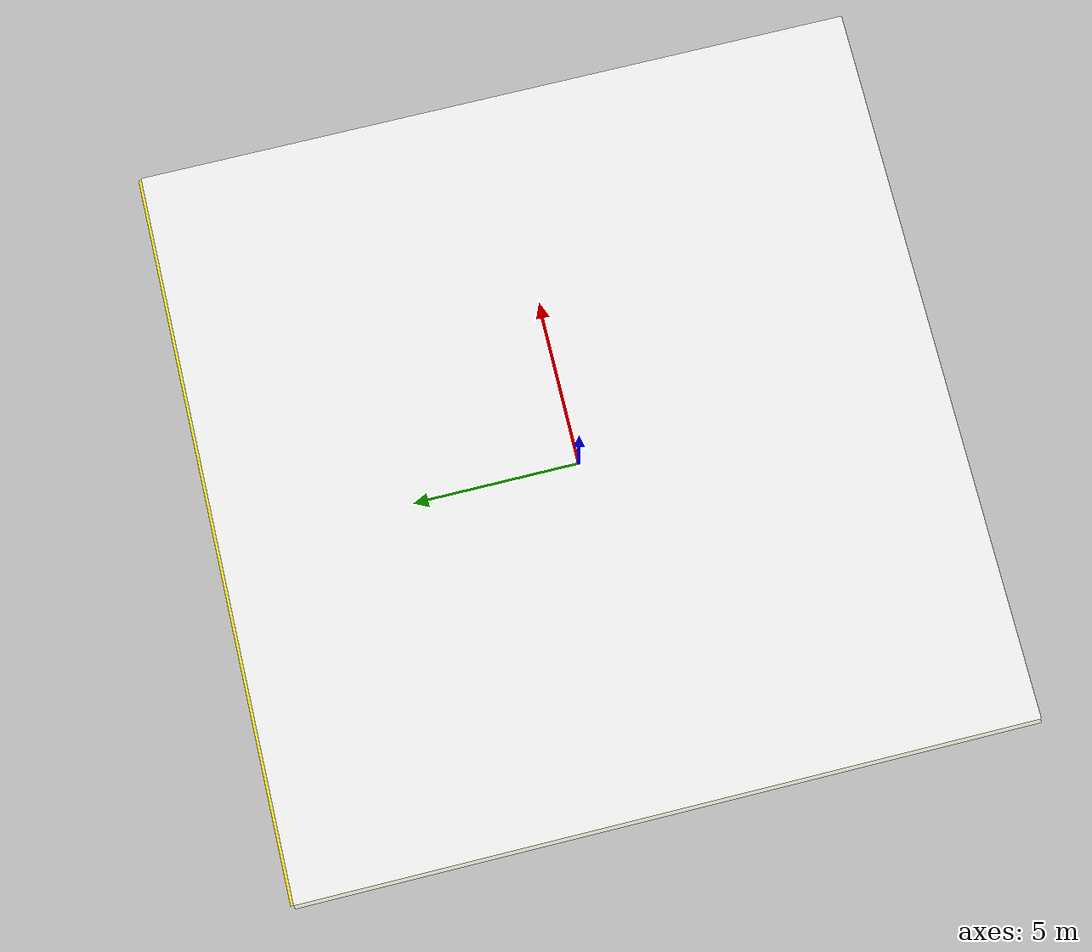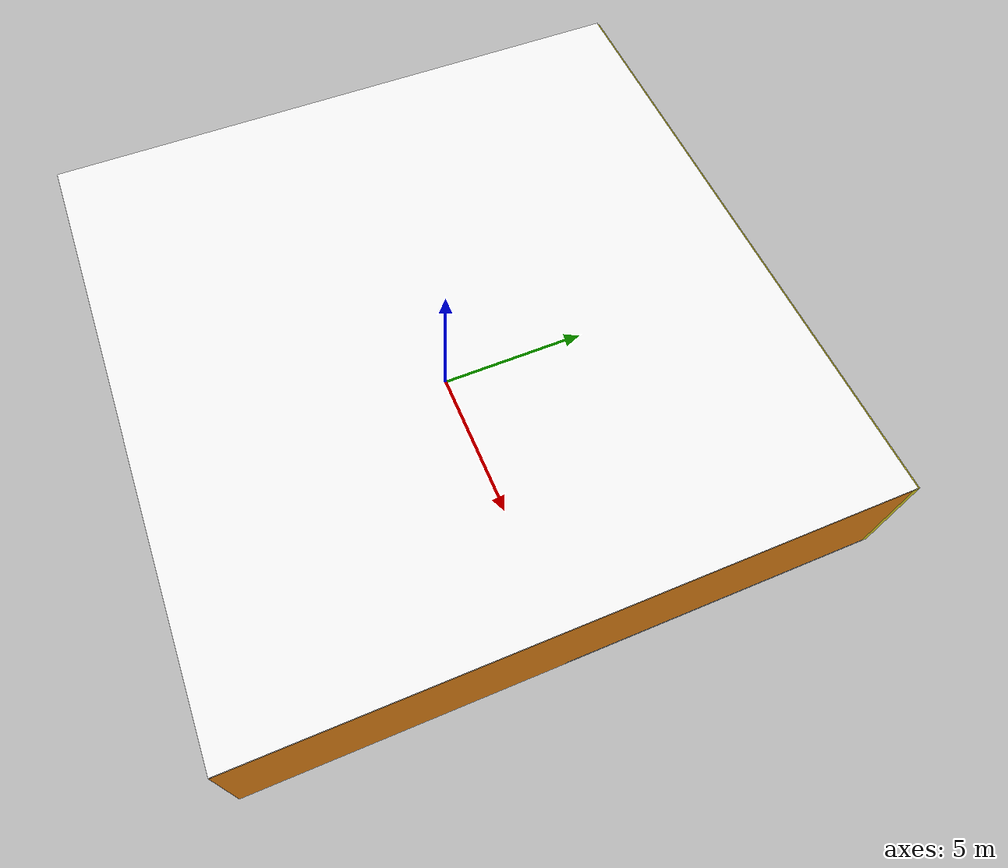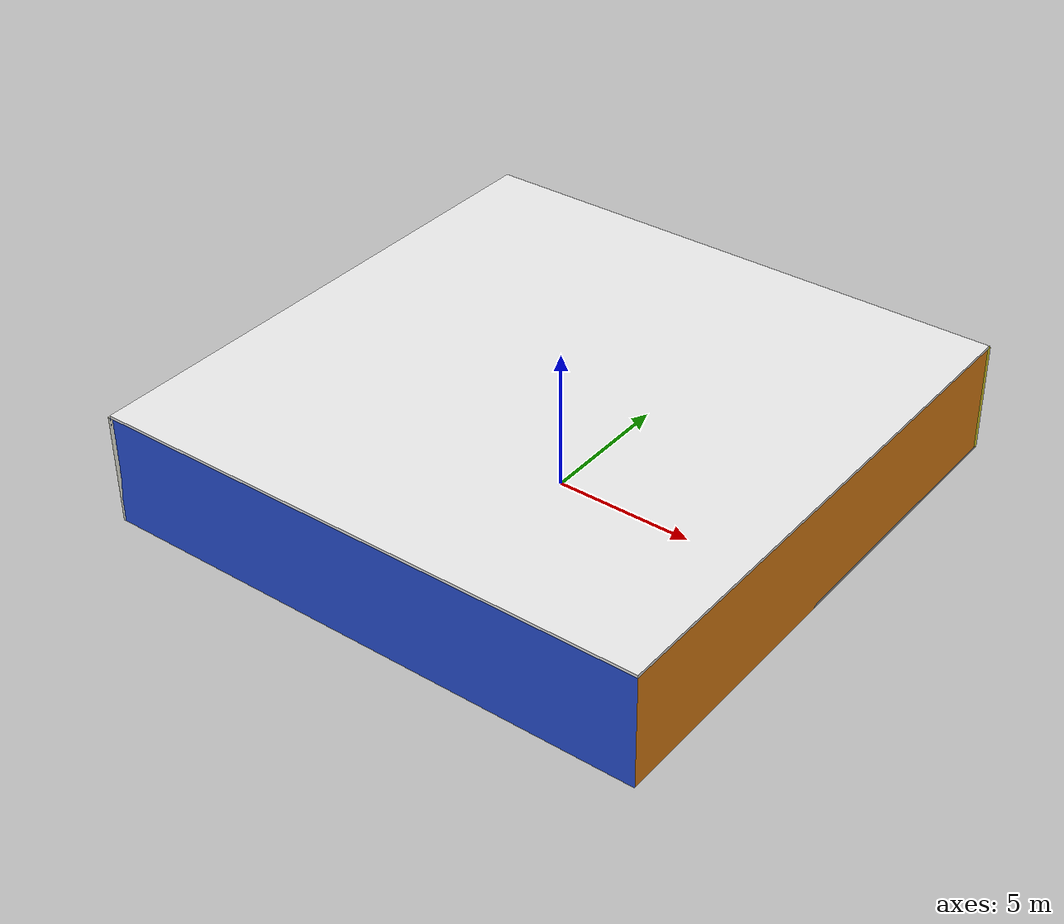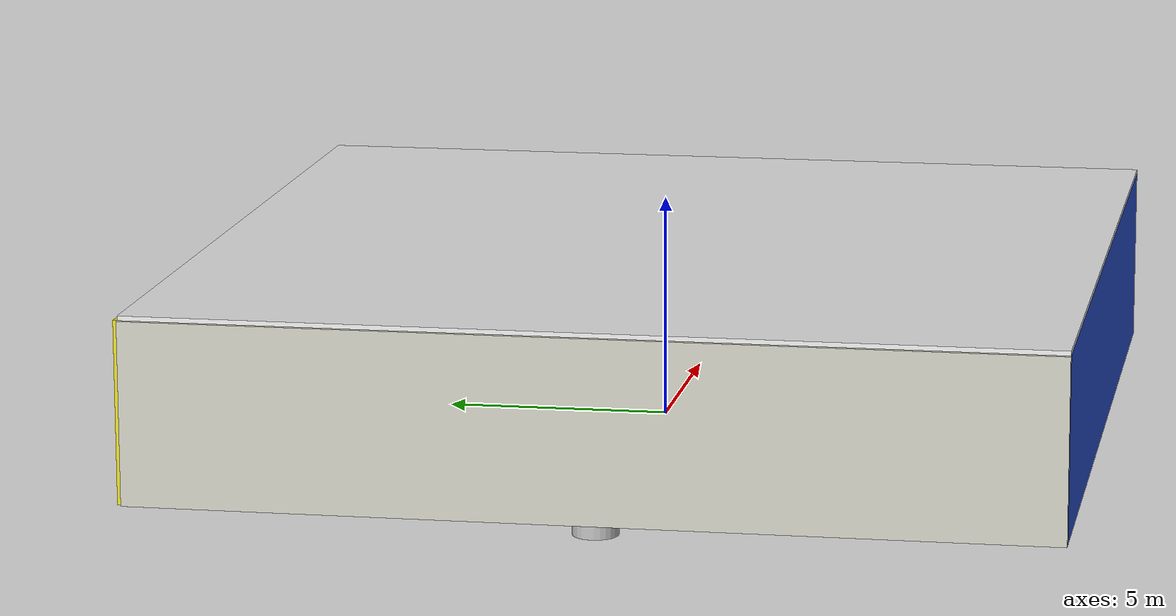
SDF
<sdf version="1.4">
 <world name="default">
  <physics type="ode">
   <max_step_size>0.001</max_step_size>
   <real_time_factor>1</real_time_factor>
   <real_time_update_rate>1000</real_time_update_rate>
   <gravity>0 0 -9.8</gravity>
  </physics>
  <scene><ambient>0.4 0.4 0.4 1</ambient><background>0.7 0.7 0.7 1</background><shadows>1</shadows></scene>
  <model name="Surrounding">
   <static>1</static>
   <link name="Ceiling">
    <collision name="Ceiling_Collision"><geometry><box><size>20 20 0.1</size></box></geometry></collision>
    <visual name="Ceiling_Visual">
     <geometry><box><size>20 20 0.1</size></box></geometry>
     <material>
      <script><uri>file://media/materials/scripts/gazebo.material</uri><name>Gazebo/WhiteGlow</name></script>
     </material>
    </visual>
    <pose>0 0 4.05 0 0 0</pose>
   </link>
   <link name="Wall_South">
    <collision name="Wall_South_Collision">
     <geometry><box><size>20 0 4</size></box></geometry>
     <pose>0 0 2 0 -0 0</pose>
    </collision>
    <visual name="Wall_South_Visual">
     <pose>0 0 2 0 -0 0</pose>
     <geometry><box><size>20 0 4</size></box></geometry>
     <material>
      <script><uri>file://media/materials/scripts/gazebo.material</uri><name>Gazebo/BlueLaser</name></script>
     </material>
    </visual>
    <velocity_decay><linear>0</linear><angular>0</angular></velocity_decay>
    <pose>0 -10 0 0 -0 0</pose>
   </link>
   <link name="Wall_East">
    <collision name="Wall_21_Collision">
     <geometry><box><size>20 0 4</size></box></geometry>
     <pose>0 0 2 0 -0 0</pose>
    </collision>
    <visual name="Wall_21_Visual">
     <pose>0 0 2 0 -0 0</pose>
     <geometry><box><size>20 0 4</size></box></geometry>
     <material>
      <script><uri>file://media/materials/scripts/gazebo.material</uri><name>Gazebo/Orange</name></script>
     </material>
    </visual>
    <velocity_decay><linear>0</linear><angular>0</angular></velocity_decay>
    <pose>10 0 0 0 -0 1.5708</pose>
   </link>
   <link name="Wall_North">
    <collision name="Wall_22_Collision">
     <geometry><box><size>20 0.2 4</size></box></geometry>
     <pose>0 0 2 0 -0 0</pose>
    </collision>
    <visual name="Wall_22_Visual">
     <pose>0 0 2 0 -0 0</pose>
     <geometry><box><size>20 0.2 4</size></box></geometry>
     <material>
      <script><uri>file://media/materials/scripts/gazebo.material</uri><name>Gazebo/Yellow</name></script>
     </material>
    </visual>
    <velocity_decay><linear>0</linear><angular>0</angular></velocity_decay>
    <pose>0 10 0 0 -0 0</pose>
   </link>
   <link name="Wall_West">
    <collision name="Wall_23_Collision">
     <geometry><box><size>20 0.2 4</size></box></geometry>
     <pose>0 0 2 0 -0 0</pose>
    </collision>
    <visual name="Wall_23_Visual">
     <pose>0 0 2 0 -0 0</pose>
     <geometry><box><size>20 0.2 4</size></box></geometry>
     <material>
      <script><uri>file://media/materials/scripts/gazebo.material</uri><name>Gazebo/PaintedWall</name></script>
     </material>
    </visual>
    <velocity_decay><linear>0</linear><angular>0</angular></velocity_decay>
    <pose>-10 0 0 0 0 -1.5708</pose>
   </link>
   <link name="Ground_link">
    <collision name="collision">
     <pose>0 0 .05 0 -0 0</pose>
     <geometry><box><size>20 20 0.1</size></box></geometry>
    </collision>
    <visual name="visual">
     <pose>0 0 .05 0 -0 0</pose>
     <geometry><box><size>20 20 0.1</size></box></geometry>
     <material>
      <script><uri>file://media/materials/scripts/gazebo.material</uri><name>Gazebo/GreyGradientSky</name></script>
     </material>
    </visual>
   </link>
   <static>1</static>
  </model>
  <spherical_coordinates>
   <surface_model>EARTH_WGS84</surface_model>
   <latitude_deg>0</latitude_deg>
   <longitude_deg>0</longitude_deg>
   <elevation>0</elevation>
   <heading_deg>0</heading_deg>
  </spherical_coordinates>
  <light name="lightball_0" type="diffuse">
   <diffuse>0.8 0.8 0.8 1</diffuse>
   <specular>0.2 0.2 0.2 1</specular>
   <attenuation>
    <range>100</range>
    <constant>0.7</constant>
    <linear>0.01</linear>
    <quadratic>0.001</quadratic>
   </attenuation>
   <direction>-0.5 0.1 -0.9</direction>
   <pose>-6.01069219463 0.523294087823 0.995450274198 0 0 0</pose>
  </light>
  <include>
   <uri>model://textured_shapes</uri>
   <pose>-7.8818978217 1.18785482023 0 0 0 2.45489299721</pose>
  </include>
  <include><uri>model://cabinet</uri><pose>-6.72986937158 7.77899705725 0 0 0 1.8702048217</pose></include>
  <include><uri>model://cabinet</uri><pose>-1.13946428931 1.87880889424 0 0 0 2.24594459321</pose></include>
  <include>
   <uri>model://textured_shapes</uri>
   <pose>0.887409586922 -4.85271112572 0 0 0 1.06337428549</pose>
  </include>
  <include><uri>model://table</uri><pose>7.60015058784 -6.72845625105 0 0 0 2.38919561277</pose></include>
  <include>
   <uri>model://construction_cone</uri>
   <pose>7.64195897482 1.80082174237 0 0 0 2.8225606453</pose>
  </include>
  <include>
   <uri>model://textured_shapes</uri>
   <pose>7.36615336758 4.83754120346 0 0 0 2.40954964576</pose>
  </include>
  <include>
   <uri>model://textured_shapes</uri>
   <pose>7.05357420501 6.72704619145 0 0 0 2.6472934429</pose>
  </include>
 </world>
</sdf>

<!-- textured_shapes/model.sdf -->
<sdf version="1.6">
  <model name="textured_shapes">
    <pose>0 0 0.5 0 0 0</pose>
    <link name="box">
      <pose>0 -1.5 0 0 0 0</pose>
      <collision name="collision">
        <geometry>
          <box>
            <size>1 1 1</size>
          </box>
        </geometry>
      </collision>
      <visual name="visual">
        <geometry>
          <box>
            <size>1 1 1</size>
          </box>
        </geometry>
        <material>
          <script>
            <uri>model://../model_source/models/textured_shapes/materials/scripts</uri>
            <uri>model://../model_source/models/textured_shapes/materials/textures</uri>
            <name>TexturedShape/Squares</name>
          </script>
        </material>
      </visual>
    </link>
    <link name="sphere">
      <collision name="collision">
        <geometry>
          <sphere>
            <radius>0.5</radius>
          </sphere>
        </geometry>
      </collision>
      <visual name="visual">
        <geometry>
          <sphere>
            <radius>0.5</radius>
          </sphere>
        </geometry>
        <material>
          <script>
            <uri>model://../model_source/models/textured_shapes/materials/scripts</uri>
            <uri>model://../model_source/models/textured_shapes/materials/textures</uri>
            <name>TexturedShape/Squares</name>
          </script>
        </material>
      </visual>
    </link>
    <link name="cylinder">
      <pose>0 1.5 0 0 0 0</pose>
      <collision name="collision">
        <geometry>
          <cylinder>
            <radius>0.5</radius>
            <length>1</length>
          </cylinder>
        </geometry>
      </collision>
      <visual name="visual">
        <geometry>
          <cylinder>
            <radius>0.5</radius>
            <length>1</length>
          </cylinder>
        </geometry>
        <material>
          <script>
            <uri>model://../model_source/models/textured_shapes/materials/scripts</uri>
            <uri>model://../model_source/models/textured_shapes/materials/textures</uri>
            <name>TexturedShape/Squares</name>
          </script>
        </material>
      </visual>
    </link>
  </model>
</sdf>

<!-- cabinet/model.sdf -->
<sdf version="1.5">
  <model name="cabinet">
    <static>true</static>
    <link name="cabinet_bottom_plate">
      <inertial>
        <pose>0 0 -1 0 0 0</pose>
        <inertia>
          <ixx>2.050000</ixx>
          <ixy>0</ixy>
          <ixz>0</ixz>
          <iyy>2.050000</iyy>
          <iyz>0</iyz>
          <izz>2.050000</izz>
        </inertia>
        <mass>25.000000</mass>
      </inertial>
      <collision name="cabinet_bottom_plate_geom">
        <pose>0 0 0.010000 0 0 0</pose>
        <geometry>
          <box>
            <size>0.450000 0.450000 0.020000</size>
          </box>
        </geometry>
      </collision>
      <visual name="cabinet_bottom_plate_geom_visual">
        <pose>0 0 0.010000 0 0 0</pose>
        <geometry>
          <box>
            <size>0.450000 0.450000 0.020000</size>
          </box>
        </geometry>
        <material>
          <script>
            <uri>model://media/materials/scripts/gazebo.material</uri>
            <name>Gazebo/Wood</name>
          </script>
        </material>
      </visual>
      <collision name="cabinet_bottom_plate_geom_cabinet_back_plate">
        <pose>0.235000 0 0.510000 0 0 0</pose>
        <geometry>
          <box>
            <size>0.020000 0.450000 1.020000</size>
          </box>
        </geometry>
      </collision>
      <visual name="cabinet_bottom_plate_geom_cabinet_back_plate_visual">
        <pose>0.235000 0 0.510000 0 0 0</pose>
        <geometry>
          <box>
            <size>0.020000 0.450000 1.020000</size>
          </box>
        </geometry>
        <material>
          <script>
            <uri>model://media/materials/scripts/gazebo.material</uri>
            <name>Gazebo/Wood</name>
          </script>
        </material>
      </visual>
      <collision name="cabinet_bottom_plate_geom_cabinet_left_plate">
        <pose>0 0.235000 0.510000 0 0 0</pose>
        <geometry>
          <box>
            <size>0.450000 0.020000 1.020000</size>
          </box>
        </geometry>
      </collision>
      <visual name="cabinet_bottom_plate_geom_cabinet_left_plate_visual">
        <pose>0 0.235000 0.510000 0 0 0</pose>
        <geometry>
          <box>
            <size>0.450000 0.020000 1.020000</size>
          </box>
        </geometry>
        <material>
          <script>
            <uri>model://media/materials/scripts/gazebo.material</uri>
            <name>Gazebo/Wood</name>
          </script>
        </material>
      </visual>
      <collision name="cabinet_bottom_plate_geom_cabinet_middle_plate">
        <pose>0 0 0.510000 0 0 0</pose>
        <geometry>
          <box>
            <size>0.450000 0.450000 0.020000</size>
          </box>
        </geometry>
      </collision>
      <visual name="cabinet_bottom_plate_geom_cabinet_middle_plate_visual">
        <pose>0 0 0.510000 0 0 0</pose>
        <geometry>
          <box>
            <size>0.450000 0.450000 0.020000</size>
          </box>
        </geometry>
        <material>
          <script>
            <uri>model://media/materials/scripts/gazebo.material</uri>
            <name>Gazebo/Wood</name>
          </script>
        </material>
      </visual>
      <collision name="cabinet_bottom_plate_geom_cabinet_right_plate">
        <pose>0 -0.235000 0.510000 0 0 0</pose>
        <geometry>
          <box>
            <size>0.450000 0.020000 1.020000</size>
          </box>
        </geometry>
      </collision>
      <visual name="cabinet_bottom_plate_geom_cabinet_right_plate_visual">
        <pose>0 -0.235000 0.510000 0 0 0</pose>
        <geometry>
          <box>
            <size>0.450000 0.020000 1.020000</size>
          </box>
        </geometry>
        <material>
          <script>
            <uri>model://media/materials/scripts/gazebo.material</uri>
            <name>Gazebo/Wood</name>
          </script>
        </material>
      </visual>
      <collision name="cabinet_bottom_plate_geom_cabinet_top_plate">
        <pose>0 0 1.010000 0 0 0</pose>
        <geometry>
          <box>
            <size>0.450000 0.450000 0.020000</size>
          </box>
        </geometry>
      </collision>
      <visual name="cabinet_bottom_plate_geom_cabinet_top_plate_visual">
        <pose>0 0 1.010000 0 0 0</pose>
        <geometry>
          <box>
            <size>0.450000 0.450000 0.020000</size>
          </box>
        </geometry>
        <material>
          <script>
            <uri>model://media/materials/scripts/gazebo.material</uri>
            <name>Gazebo/Wood</name>
          </script>
        </material>
      </visual>
    </link>
  </model>
</sdf>

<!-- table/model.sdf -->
<sdf version="1.5">
  <model name="table">
    <static>true</static>
    <link name="link">
      <collision name="surface">
        <pose>0 0 1.0 0 0 0</pose>
        <geometry>
          <box>
            <size>1.5 0.8 0.03</size>
          </box>
        </geometry>
        <surface>
          <friction>
            <ode>
              <mu>0.6</mu>
              <mu2>0.6</mu2>
            </ode>
          </friction>
        </surface>
      </collision>
      <visual name="visual1">
        <pose>0 0 1.0 0 0 0</pose>
        <geometry>
          <box>
            <size>1.5 0.8 0.03</size>
          </box>
        </geometry>
        <material>
          <script>
            <uri>model://media/materials/scripts/gazebo.material</uri>
            <name>Gazebo/Wood</name>
          </script>
        </material>
      </visual>
      <collision name="front_left_leg">
        <pose>0.68 0.38 0.5 0 0 0</pose>
        <geometry>
          <cylinder>
            <radius>0.02</radius>
            <length>1.0</length>
          </cylinder>
        </geometry>
      </collision>
      <visual name="front_left_leg">
        <pose>0.68 0.38 0.5 0 0 0</pose>
        <geometry>
          <cylinder>
            <radius>0.02</radius>
            <length>1.0</length>
          </cylinder>
        </geometry>
        <material>
          <script>
            <uri>model://media/materials/scripts/gazebo.material</uri>
            <name>Gazebo/Grey</name>
          </script>
        </material>
      </visual>
      <collision name="front_right_leg">
        <pose>0.68 -0.38 0.5 0 0 0</pose>
        <geometry>
          <cylinder>
            <radius>0.02</radius>
            <length>1.0</length>
          </cylinder>
        </geometry>
      </collision>
      <visual name="front_right_leg">
        <pose>0.68 -0.38 0.5 0 0 0</pose>
        <geometry>
          <cylinder>
            <radius>0.02</radius>
            <length>1.0</length>
          </cylinder>
        </geometry>
        <material>
          <script>
            <uri>model://media/materials/scripts/gazebo.material</uri>
            <name>Gazebo/Grey</name>
          </script>
        </material>
      </visual>
      <collision name="back_right_leg">
        <pose>-0.68 -0.38 0.5 0 0 0</pose>
        <geometry>
          <cylinder>
            <radius>0.02</radius>
            <length>1.0</length>
          </cylinder>
        </geometry>
      </collision>
      <visual name="back_right_leg">
        <pose>-0.68 -0.38 0.5 0 0 0</pose>
        <geometry>
          <cylinder>
            <radius>0.02</radius>
            <length>1.0</length>
          </cylinder>
        </geometry>
        <material>
          <script>
            <uri>model://media/materials/scripts/gazebo.material</uri>
            <name>Gazebo/Grey</name>
          </script>
        </material>
      </visual>
      <collision name="back_left_leg">
        <pose>-0.68 0.38 0.5 0 0 0</pose>
        <geometry>
          <cylinder>
            <radius>0.02</radius>
            <length>1.0</length>
          </cylinder>
        </geometry>
      </collision>
      <visual name="back_left_leg">
        <pose>-0.68 0.38 0.5 0 0 0</pose>
        <geometry>
          <cylinder>
            <radius>0.02</radius>
            <length>1.0</length>
          </cylinder>
        </geometry>
        <material>
          <script>
            <uri>model://media/materials/scripts/gazebo.material</uri>
            <name>Gazebo/Grey</name>
          </script>
        </material>
      </visual>
    </link>
  </model>
</sdf>

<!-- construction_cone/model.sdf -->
<sdf version="1.5">
  <model name="Construction Cone">
    <link name="link">
      <collision name="collision">
        <geometry>
          <mesh>
            <scale>10 10 10</scale>
            <uri>file://isr-testbed/construction_cone/meshes/construction_cone.dae</uri>
          </mesh>
        </geometry>
      </collision>
      <visual name="visual">
        <geometry>
          <mesh>
            <scale>10 10 10</scale>
            <uri>file://isr-testbed/construction_cone/meshes/construction_cone.dae</uri>
          </mesh>
        </geometry>
      </visual>
    </link>
  </model>
</sdf>
